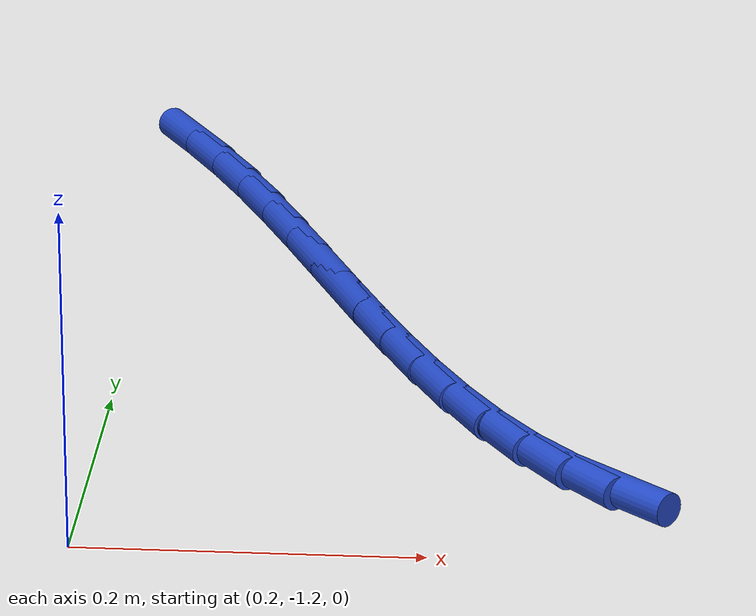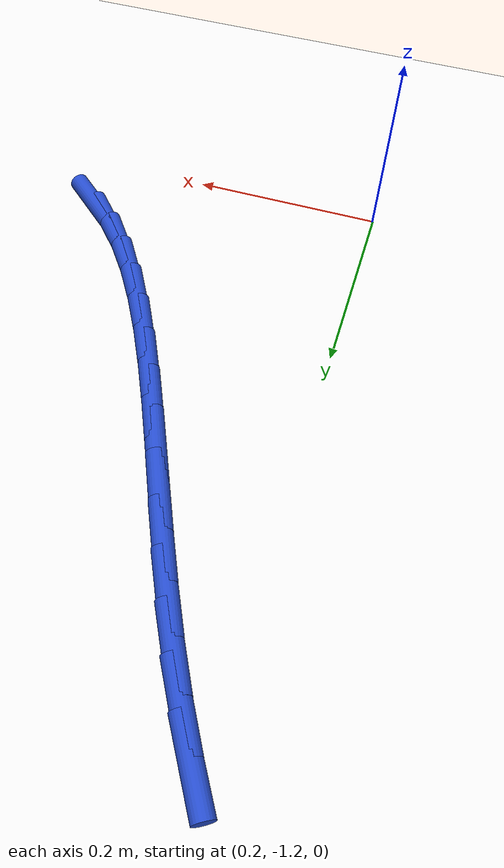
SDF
<sdf version="1.6">
 <world name="default">
  <model name="ground_plane">
   <static>1</static>
   <link name="link">
    <collision name="collision">
     <geometry><plane><normal>0 0 1</normal><size>100 100</size></plane></geometry>
     <surface><friction><ode><mu>100</mu><mu2>50</mu2></ode></friction></surface>
    </collision>
    <visual name="visual">
     <cast_shadows>0</cast_shadows>
     <geometry><plane><normal>0 0 1</normal><size>100 100</size></plane></geometry>
     <material>
      <script><uri>file://media/materials/scripts/gazebo.material</uri><name>Gazebo/WhiteGlow</name></script>
     </material>
    </visual>
   </link>
  </model>
  <model name="line">
   <link name="link_150">
    <pose>0.5026196754525605 -1.1235306401490301 0.01 0 1.57 -0.7183456507308328</pose>
    <collision name="collision">
     <geometry><cylinder><radius>0.01</radius><length>0.08</length></cylinder></geometry>
    </collision>
    <visual name="visual">
     <material>
      <script><name>Gazebo/Blue</name><uri>file://media/materials/scripts/gazebo.material</uri></script>
     </material>
     <geometry><cylinder><radius>0.01</radius><length>0.08</length></cylinder></geometry>
    </visual>
   </link>
   <link name="link_151">
    <pose>0.4764792877597872 -1.1006801461473805 0.01 0 1.57 -0.8410129608768047</pose>
    <collision name="collision">
     <geometry><cylinder><radius>0.01</radius><length>0.08</length></cylinder></geometry>
    </collision>
    <visual name="visual">
     <material>
      <script><name>Gazebo/Blue</name><uri>file://media/materials/scripts/gazebo.material</uri></script>
     </material>
     <geometry><cylinder><radius>0.01</radius><length>0.08</length></cylinder></geometry>
    </visual>
   </link>
   <link name="link_152">
    <pose>0.4520037144785048 -1.0733186910686079 0.01 0 1.57 -0.9366154658441747</pose>
    <collision name="collision">
     <geometry><cylinder><radius>0.01</radius><length>0.08</length></cylinder></geometry>
    </collision>
    <visual name="visual">
     <material>
      <script><name>Gazebo/Blue</name><uri>file://media/materials/scripts/gazebo.material</uri></script>
     </material>
     <geometry><cylinder><radius>0.01</radius><length>0.08</length></cylinder></geometry>
    </visual>
   </link>
   <link name="link_153">
    <pose>0.42897388746211723 -1.0420085022425485 0.01 0 1.57 -1.0097610591660233</pose>
    <collision name="collision">
     <geometry><cylinder><radius>0.01</radius><length>0.08</length></cylinder></geometry>
    </collision>
    <visual name="visual">
     <material>
      <script><name>Gazebo/Blue</name><uri>file://media/materials/scripts/gazebo.material</uri></script>
     </material>
     <geometry><cylinder><radius>0.01</radius><length>0.08</length></cylinder></geometry>
    </visual>
   </link>
   <link name="link_154">
    <pose>0.40717073856402836 -1.0073118069990394 0.01 0 1.57 -1.064705417962108</pose>
    <collision name="collision">
     <geometry><cylinder><radius>0.01</radius><length>0.08</length></cylinder></geometry>
    </collision>
    <visual name="visual">
     <material>
      <script><name>Gazebo/Blue</name><uri>file://media/materials/scripts/gazebo.material</uri></script>
     </material>
     <geometry><cylinder><radius>0.01</radius><length>0.08</length></cylinder></geometry>
    </visual>
   </link>
   <link name="link_155">
    <pose>0.3863751996376437 -0.9697908326679192 0.01 0 1.57 -1.1048291373343855</pose>
    <collision name="collision">
     <geometry><cylinder><radius>0.01</radius><length>0.08</length></cylinder></geometry>
    </collision>
    <visual name="visual">
     <material>
      <script><name>Gazebo/Blue</name><uri>file://media/materials/scripts/gazebo.material</uri></script>
     </material>
     <geometry><cylinder><radius>0.01</radius><length>0.08</length></cylinder></geometry>
    </visual>
   </link>
   <link name="link_156">
    <pose>0.36636820253636676 -0.9300078065790242 0.01 0 1.57 -1.1326092457012205</pose>
    <collision name="collision">
     <geometry><cylinder><radius>0.01</radius><length>0.08</length></cylinder></geometry>
    </collision>
    <visual name="visual">
     <material>
      <script><name>Gazebo/Blue</name><uri>file://media/materials/scripts/gazebo.material</uri></script>
     </material>
     <geometry><cylinder><radius>0.01</radius><length>0.08</length></cylinder></geometry>
    </visual>
   </link>
   <link name="link_157">
    <pose>0.3469306791136022 -0.8885249560621915 0.01 0 1.57 -1.149740566348047</pose>
    <collision name="collision">
     <geometry><cylinder><radius>0.01</radius><length>0.08</length></cylinder></geometry>
    </collision>
    <visual name="visual">
     <material>
      <script><name>Gazebo/Blue</name><uri>file://media/materials/scripts/gazebo.material</uri></script>
     </material>
     <geometry><cylinder><radius>0.01</radius><length>0.08</length></cylinder></geometry>
    </visual>
   </link>
   <link name="link_158">
    <pose>0.32784356122275404 -0.8459045084472586 0.01 0 1.57 -1.1572669975052021</pose>
    <collision name="collision">
     <geometry><cylinder><radius>0.01</radius><length>0.08</length></cylinder></geometry>
    </collision>
    <visual name="visual">
     <material>
      <script><name>Gazebo/Blue</name><uri>file://media/materials/scripts/gazebo.material</uri></script>
     </material>
     <geometry><cylinder><radius>0.01</radius><length>0.08</length></cylinder></geometry>
    </visual>
   </link>
   <link name="link_159">
    <pose>0.3088877807172264 -0.8027086910640616 0.01 0 1.57 -1.155677509951657</pose>
    <collision name="collision">
     <geometry><cylinder><radius>0.01</radius><length>0.08</length></cylinder></geometry>
    </collision>
    <visual name="visual">
     <material>
      <script><name>Gazebo/Blue</name><uri>file://media/materials/scripts/gazebo.material</uri></script>
     </material>
     <geometry><cylinder><radius>0.01</radius><length>0.08</length></cylinder></geometry>
    </visual>
   </link>
   <link name="link_160">
    <pose>0.28984426945042413 -0.7594997312424392 0.01 0 1.57 -1.1449567393576783</pose>
    <collision name="collision">
     <geometry><cylinder><radius>0.01</radius><length>0.08</length></cylinder></geometry>
    </collision>
    <visual name="visual">
     <material>
      <script><name>Gazebo/Blue</name><uri>file://media/materials/scripts/gazebo.material</uri></script>
     </material>
     <geometry><cylinder><radius>0.01</radius><length>0.08</length></cylinder></geometry>
    </visual>
   </link>
   <link name="link_161">
    <pose>0.27049395927575137 -0.7168398563122284 0.01 0 1.57 -1.1245903852774177</pose>
    <collision name="collision">
     <geometry><cylinder><radius>0.01</radius><length>0.08</length></cylinder></geometry>
    </collision>
    <visual name="visual">
     <material>
      <script><name>Gazebo/Blue</name><uri>file://media/materials/scripts/gazebo.material</uri></script>
     </material>
     <geometry><cylinder><radius>0.01</radius><length>0.08</length></cylinder></geometry>
    </visual>
   </link>
   <link name="link_162">
    <pose>0.25061778204661234 -0.6752912936032656 0.01 0 1.57 -1.0935523205934499</pose>
    <collision name="collision">
     <geometry><cylinder><radius>0.01</radius><length>0.08</length></cylinder></geometry>
    </collision>
    <visual name="visual">
     <material>
      <script><name>Gazebo/Blue</name><uri>file://media/materials/scripts/gazebo.material</uri></script>
     </material>
     <geometry><cylinder><radius>0.01</radius><length>0.08</length></cylinder></geometry>
    </visual>
   </link>
   <link name="link_163">
    <pose>0.2299973380813779 -0.6354151960422405 0.01 0 1.57 -1.0564803110231522</pose>
    <collision name="collision">
     <geometry><cylinder><radius>0.01</radius><length>0.08</length></cylinder></geometry>
    </collision>
    <visual name="visual">
     <material>
      <script><name>Gazebo/Blue</name><uri>file://media/materials/scripts/gazebo.material</uri></script>
     </material>
     <geometry><cylinder><radius>0.01</radius><length>0.08</length></cylinder></geometry>
    </visual>
   </link>
   <link name="link_164">
    <pose>0.20857859766779266 -0.597508529767604 0.01 0 1.57 -1.027474606590848</pose>
    <collision name="collision">
     <geometry><cylinder><radius>0.01</radius><length>0.08</length></cylinder></geometry>
    </collision>
    <visual name="visual">
     <material>
      <script><name>Gazebo/Blue</name><uri>file://media/materials/scripts/gazebo.material</uri></script>
     </material>
     <geometry><cylinder><radius>0.01</radius><length>0.08</length></cylinder></geometry>
    </visual>
   </link>
  </model>
 </world>
</sdf>
